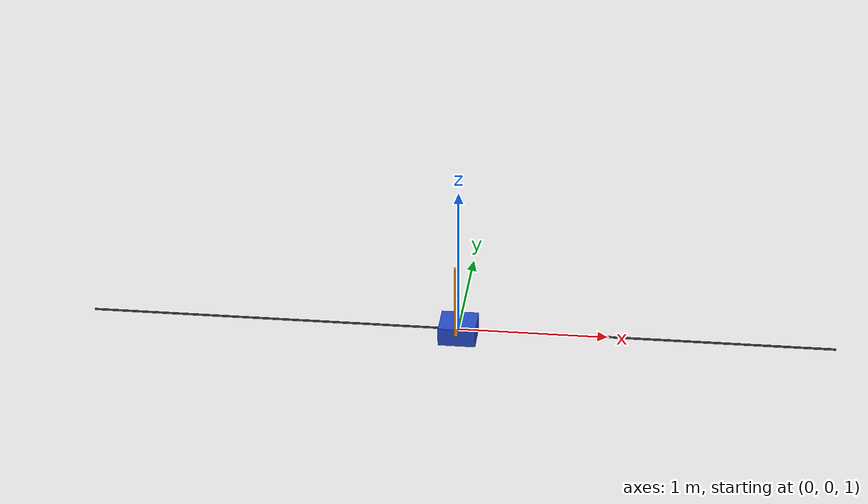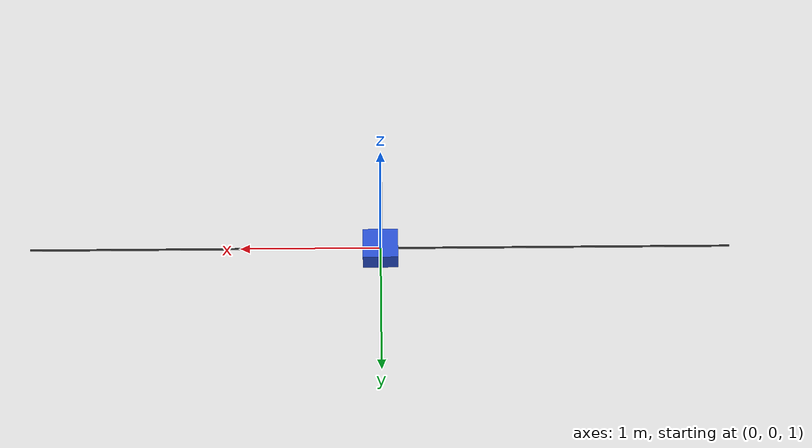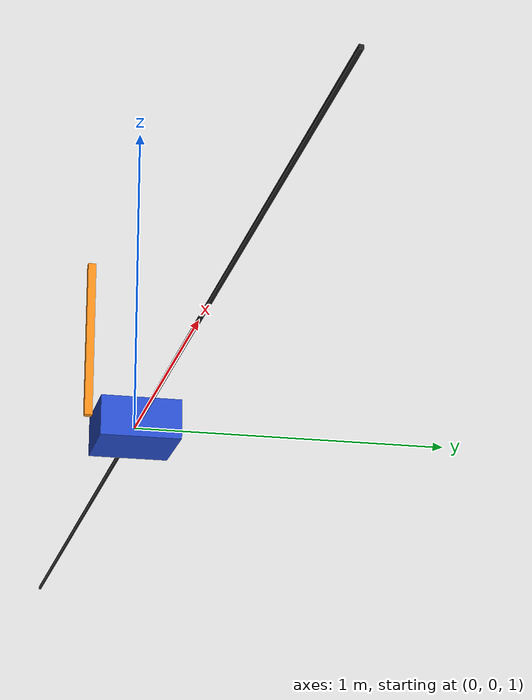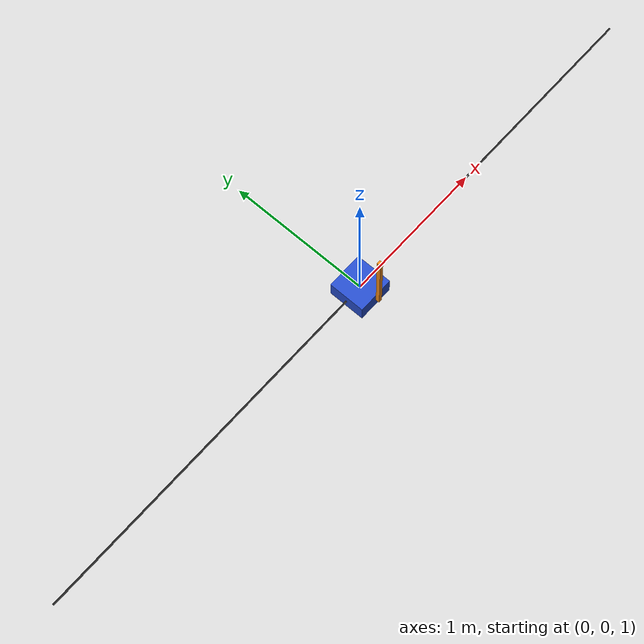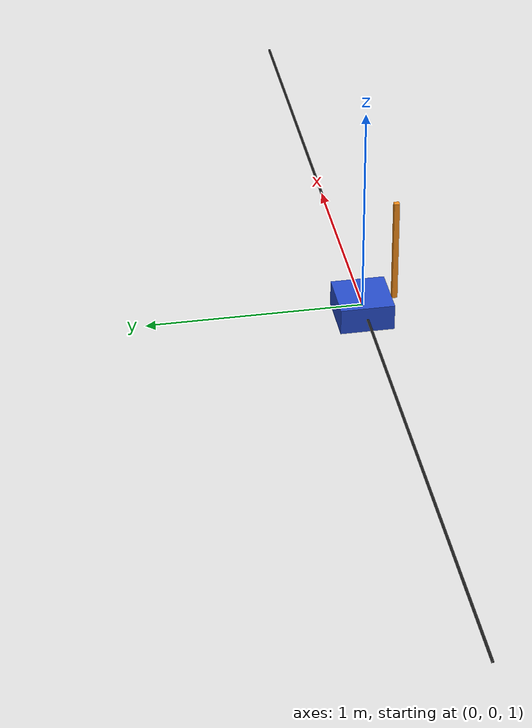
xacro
<?xml version="1.0"?>
<!-- Revolute-Revolute Manipulator -->
<robot name="invpend" xmlns:xacro="http://www.ros.org/wiki/xacro">

  <!-- Constants for robot dimensions -->
  <xacro:property name="PI" value="3.1415926535897931"/>
  <xacro:property name="mass_slider" value="100" /> <!-- arbitrary value for mass -->
  <xacro:property name="mass_cart" value="20.0" /> <!-- arbitrary value for mass -->
  <xacro:property name="mass_pole" value="2.0" /> <!-- arbitrary value for mass -->
  <xacro:property name="width" value="0.25" /> <!-- cart width -->
  <xacro:property name="height" value="0.125" /> <!-- cart height -->
  <xacro:property name="depth" value="0.25" /> <!-- cart depth -->
  <xacro:property name="length_slider" value="5" /> <!-- pole length -->
  <xacro:property name="length_pole" value="0.5" /> <!-- pole length -->
  <xacro:property name="radius" value="0.01" /> <!-- slender bar radius -->
  <xacro:property name="radius_pole" value="0.025" /> <!-- pole radius -->

  <!-- Include gazebo properties -->
  <xacro:include filename="invpend_gazebo.xacro"/>
  <!-- Import rviz colors -->
  <xacro:include filename="materials.xacro"/>

  <xacro:include filename="ros2_control.xacro"/>

  <!-- Used for fixing robot to Gazebo 'base_link' -->
  <link name="world"/>

  <joint name="fixed" type="fixed">
    <parent link="world"/>
    <child link="slidebar"/>
    <origin xyz="0 0 1"/>
  </joint>
        <state_interface name="effort"/>
  <!-- Slider Link -->
  <link name="slidebar">
    <visual>
      <origin xyz="0 0 0" rpy="0 0 0"/>
      <geometry>
	<box size="${length_slider} ${radius} ${radius}"/>
      </geometry>
      <material name="black"/>
    </visual>

    <inertial>
      <origin xyz="0 0 0" rpy="0 0 0"/>
      <mass value="${mass_slider}"/>
      <inertia
	  ixx="${mass_slider*length_slider*length_slider/12}" ixy="0.0" ixz="0.0"
	  iyy="0.0" iyz="0.0"
	  izz="${mass_slider*length_slider*length_slider/12}"/>
    </inertial>
  </link>

  <joint name="slider_to_cart" type="prismatic">
    <parent link="slidebar"/>
    <child link="cart"/>
    <origin xyz="0 0 0" rpy="0 0 0"/>
    <axis xyz="1 0 0"/>
    <limit effort="100.0" lower="-2.5" upper="2.5" velocity="100"/>
    <dynamics damping="0.0001"/>
    <transmission name="transmission_slider">
      <type>transmission_interface/SimpleTransmission</type>
      <joint name="slider_to_cart">
        <hardwareInterface>hardware_interface/EffortJointInterface</hardwareInterface>
      </joint>
      <actuator name="slider_motor">
        <hardwareInterface>hardware_interface/EffortJointInterface</hardwareInterface>
        <mechanicalReduction>1</mechanicalReduction>
      </actuator>
    </transmission>
  </joint>

  <!-- Cart Link -->
  <link name="cart">
    <collision>
      <origin xyz="0 0 0" rpy="0 0 0"/>
      <geometry>
	<box size="${width} ${depth} ${height}"/>
      </geometry>
    </collision>

    <visual>
      <origin xyz="0 0 0" rpy="0 0 0"/>
      <geometry>
	<box size="${width} ${depth} ${height}"/>
      </geometry>
      <material name="blue"/>
    </visual>

    <inertial>
      <origin xyz="0 0 0" rpy="0 0 0"/>
      <mass value="${mass_cart}"/>
      <inertia
	  ixx="${mass_cart*(depth*depth+height*height)/12}" ixy="0.0" ixz="0.0"
	  iyy="${mass_cart*(depth*depth+width*width)/12}" iyz="0.0"
	  izz="${mass_cart*(width*width+height*height)/12}"/>
    </inertial>
  </link>

  <joint name="cart_to_pole" type="revolute">
    <parent link="cart"/>
    <child link="pole"/>
    <origin xyz="0 ${-depth/2-radius-radius_pole/2} ${height/4}" rpy="0 0 0"/>
    <axis xyz="0 1 0"/>
    <limit effort="1000.0" lower="${-PI/2}" upper = "${PI/2}" velocity="100.0"/>
    <dynamics damping="0.1" friction="0.0"/>
    <transmission name="transmission_pole">
      <type>transmission_interface/SimpleTransmission</type>
      <joint name="cart_to_pole">
        <hardwareInterface>hardware_interface/EffortJointInterface</hardwareInterface>
      </joint>
      <actuator name="pole_motor">
        <hardwareInterface>hardware_interface/EffortJointInterface</hardwareInterface>
        <mechanicalReduction>1</mechanicalReduction>
      </actuator>
  </transmission>
  </joint>

  <!-- Pole Link -->
  <link name="pole">
    <collision>
      <origin xyz="0 0 ${length_pole/2}" rpy="0 0 0"/>
      <geometry>
	      <box size="${radius_pole} ${radius_pole} ${length_pole}"/>
      </geometry>
    </collision>

    <visual>
      <origin xyz="0 0 ${length_pole/2}" rpy="0 0 0"/>
      <geometry>
	      <box size="${radius_pole} ${radius_pole} ${length_pole}"/>
      </geometry>
      <material name="orange"/>
    </visual>

    <inertial>
      <origin xyz="0 0 ${length_pole/2}" rpy="0 0 0"/>
      <mass value="${mass_pole}"/>
      <inertia
	  ixx="${mass_pole*(radius_pole*radius_pole+length_pole*length_pole)/12}" ixy="0.0" ixz="0.0"
	  iyy="${mass_pole*(radius_pole*radius_pole+radius_pole*radius_pole)/12}" iyz="0.0"
	  izz="${mass_pole*(radius_pole*radius_pole+length_pole*length_pole)/12}"/>
    </inertial>
  </link>

</robot>
